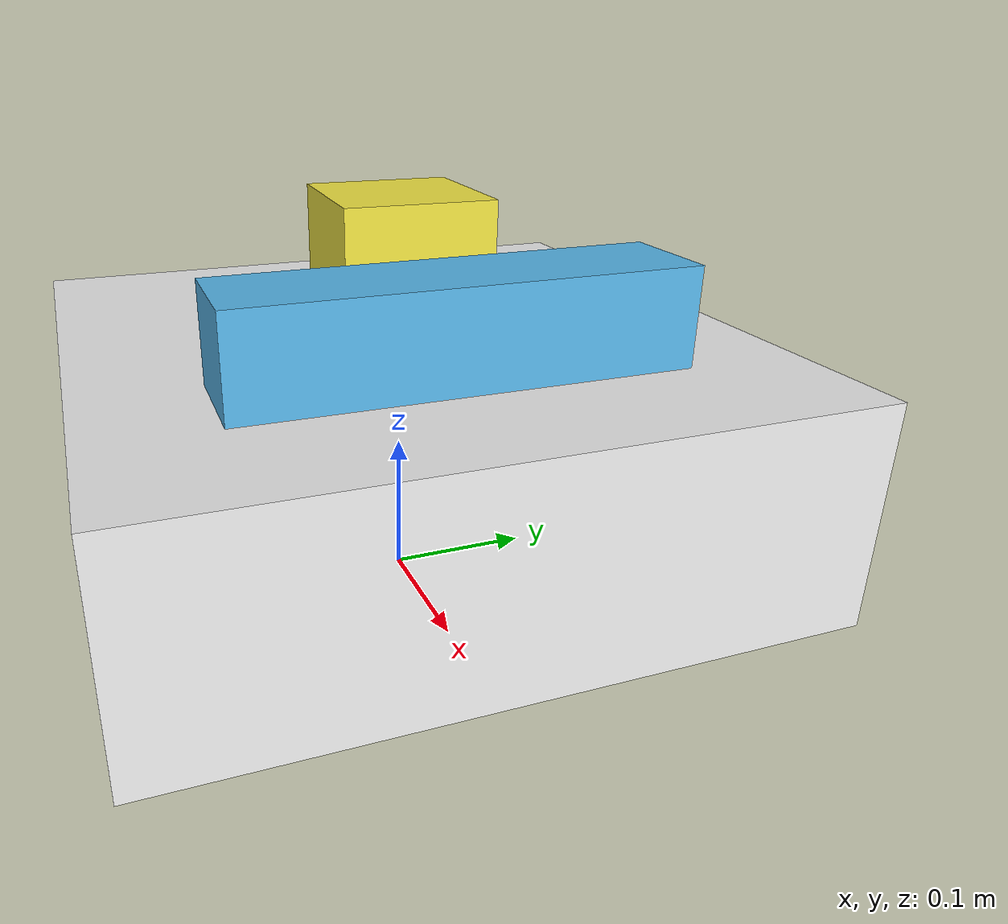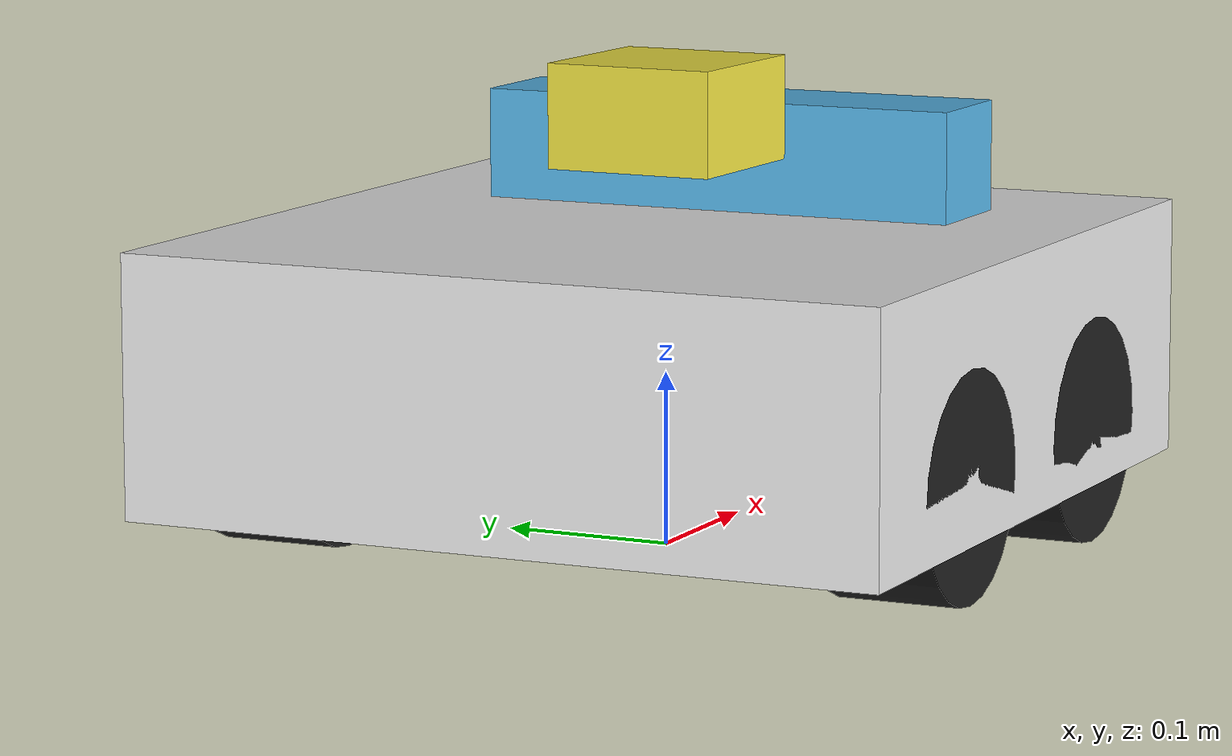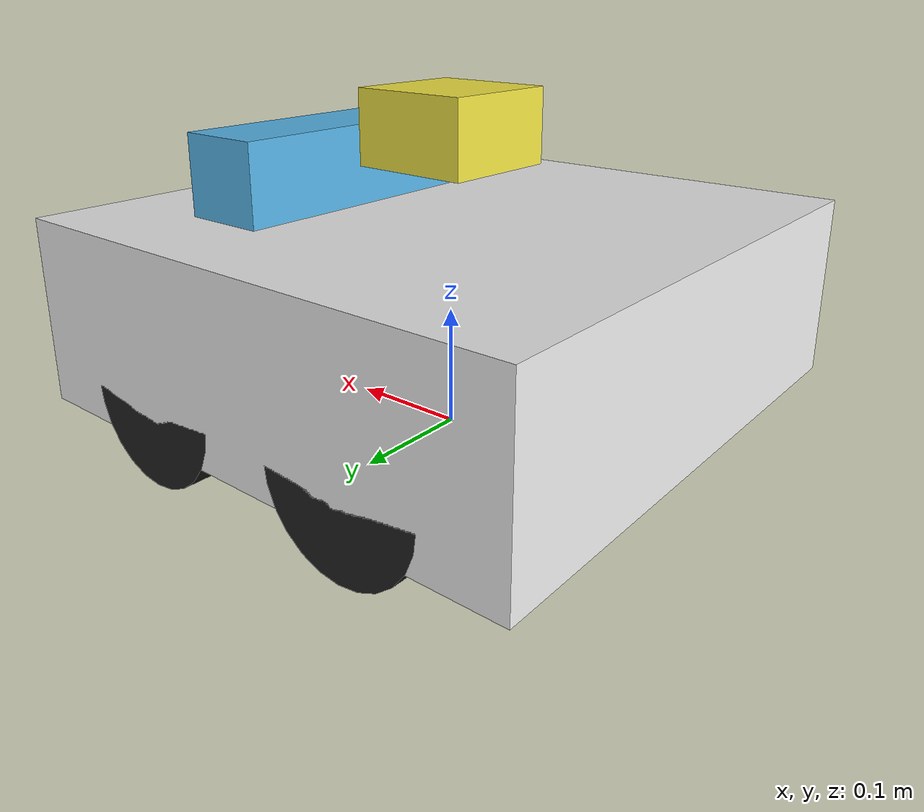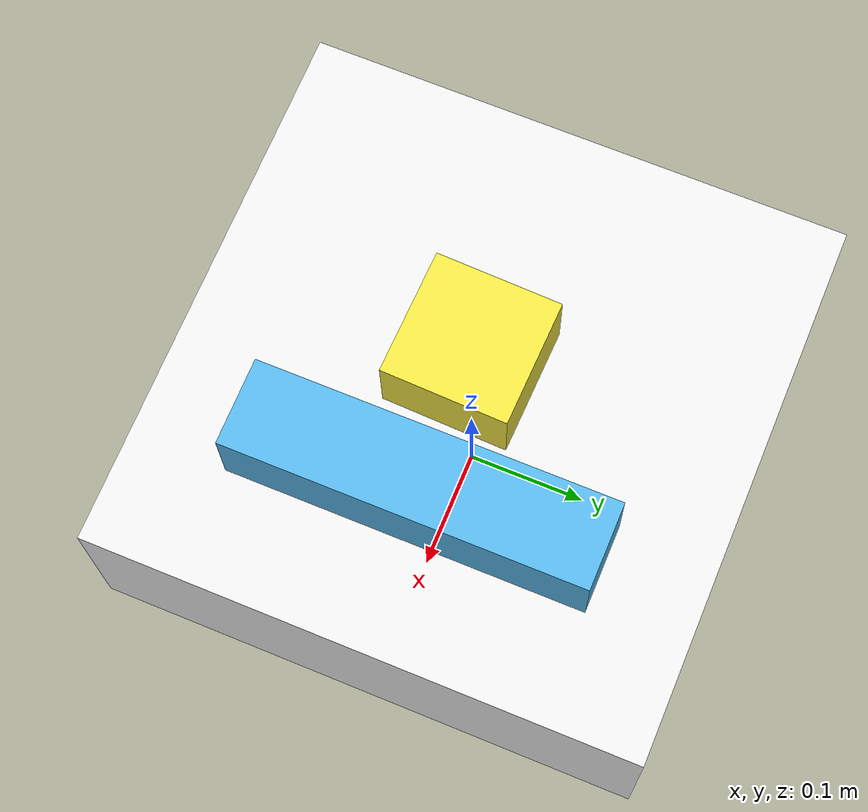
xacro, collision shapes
<?xml version="1.0"?>
<robot xmlns:xacro="http://www.ros.org/wiki/xacro" name="vaa">

  <xacro:include filename="$(find vva_description)/urdf/vaa.gazebo" />

  <xacro:property name="base_link_depth_m" value="0.45" />
  <xacro:property name="base_link_width_m" value="0.45" />
  <xacro:property name="base_link_height_m" value="0.27" />
  <xacro:property name="base_link_elevation_m" value="0.035" />
  <xacro:property name="base_link_mass_kg" value="5.0" />

  <material name="black">
    <color rgba="0 0 0 1"/>
  </material>
  <material name="white">
    <color rgba="1 1 1 1"/>
  </material>
  <material name="yellow">
    <color rgba="1 1 0 1"/>
  </material>

  <link name="base_footprint" />

  <link name="base_stabilized" />
  <joint name="base_stabilized_joint" type="fixed">
    <origin rpy="0 0 0" xyz="0 0 ${base_link_elevation_m}"/>
    <parent link="base_footprint"/>
    <child link="base_stabilized"/>
  </joint>

  <link name="base_balancing_x" />
  <!-- This joint is referenced from "vva_kinect_aux", do not change the name -->
  <joint name="base_balancing_x_joint" type="revolute">
    <axis xyz="1 0 0"/>
    <limit effort="1.0" lower="${-pi/2}" upper="${pi/2}" velocity="0.5"/>
    <origin rpy="0 0 0" xyz="0 0 0"/>
    <parent link="base_stabilized"/>
    <child link="base_balancing_x"/>
	</joint>

  <link name="base_link">
    <visual>
      <geometry>
        <mesh filename="package://vva_description/meshes/20201002_VAA_BaseLink_v3.dae" scale="1.0 1.0 1.0"/>
      </geometry>
      <origin rpy="0 0 0" xyz="-0.235 -0.38 ${base_link_height_m/2 - 0.05}"/>
    </visual>
    <collision>
      <geometry>
        <box size="${base_link_depth_m} ${base_link_width_m} ${base_link_height_m - 0.12}"/>
      </geometry>
      <origin rpy="0 0 0" xyz="0 0 ${(base_link_height_m - 0.12) / 2}"/>
    </collision>
    <inertial>
      <mass value="${base_link_mass_kg}"/>
      <inertia ixx="${(1/12)*base_link_mass_kg*((base_link_height_m**2)+(base_link_depth_m**2))}" ixy="0.0" ixz="0.0"
               iyy="${(1/12)*base_link_mass_kg*((base_link_width_m**2)+(base_link_depth_m**2))}" iyz="0.0"
               izz="${(1/12)*base_link_mass_kg*((base_link_width_m**2)+(base_link_height_m**2))}"/>
    </inertial>
  </link>
  <!-- This joint is referenced from "vva_kinect_aux", do not change the name -->
  <joint name="base_link_y_axis_joint" type="revolute">
    <axis xyz="0 1 0"/>
    <limit effort="1.0" lower="${-pi/2}" upper="${pi/2}" velocity="0.5"/>
    <origin rpy="0 0 0" xyz="0 0 0"/>
    <parent link="base_balancing_x"/>
    <child link="base_link"/>
	</joint>

  <xacro:property name="wheel_width" value="0.07" />
  <xacro:property name="wheel_diameter" value="0.13" />
  <xacro:property name="wheel_mass_kg" value="0.138" />

  <xacro:macro name="right_wheel" params="prefix joint_x joint_y">
    <link name="${prefix}_wheel">
      <visual>
        <geometry>
          <mesh filename="package://vva_description/meshes/20200914_VAA_Wheel2.dae" scale="1.0 1.0 1.0"/>
        </geometry>
        <origin rpy="0 0 0" xyz="-0.138 -0.19 0.052"/>
      </visual>
      <collision>
        <geometry>
          <cylinder length="${wheel_width}" radius="${wheel_diameter/2}"/>
        </geometry>
        <surface>
          <friction>
            <ode>
              <mu>0.4</mu>
              <mu2>0.4</mu2>
              <slip1>0.3</slip1>
              <slip2>0.3</slip2>
            </ode>
          </friction>
        </surface>
        <origin rpy="1.5708 0 0" xyz="0 0 0"/>
      </collision>
      <inertial>
        <mass value="${wheel_mass_kg}"/>
        <inertia ixx="${wheel_mass_kg/10}" ixy="0.0" ixz="0.0"
                 iyy="${wheel_mass_kg/10}" iyz="0.0"
                 izz="${wheel_mass_kg/10}"/>
      </inertial>
    </link>
    <joint name="${prefix}_wheel_joint" type="continuous">
      <parent link="base_link"/>
      <child link="${prefix}_wheel"/>
      <axis xyz="0 1 0"/>
      <origin rpy="0 0 0" xyz="${joint_x} ${joint_y} ${(wheel_diameter/2)-base_link_elevation_m+0.003}"/>
    </joint>
  </xacro:macro>

  <xacro:right_wheel prefix="right_front" joint_x="${(base_link_depth_m/2)-0.13}" joint_y="${-(base_link_width_m/2) + 0.035}" />
  <xacro:right_wheel prefix="right_back" joint_x="${-(base_link_depth_m/2)+0.13}" joint_y="${-(base_link_width_m/2) + 0.035}" />

  <xacro:macro name="left_wheel" params="prefix joint_x joint_y">
    <link name="${prefix}_wheel">
      <visual>
        <geometry>
          <mesh filename="package://vva_description/meshes/20200914_VAA_Wheel2.dae" scale="1.0 1.0 1.0"/>
        </geometry>
        <origin rpy="${pi} 0 0" xyz="-0.138 0.19 -0.052"/>
      </visual>
      <collision>
        <geometry>
          <cylinder length="${wheel_width}" radius="${wheel_diameter/2}"/>
        </geometry>
        <surface>
          <friction>
            <ode>
              <mu>0.4</mu>
              <mu2>0.4</mu2>
              <slip1>0.3</slip1>
              <slip2>0.3</slip2>
            </ode>
          </friction>
        </surface>
        <origin rpy="1.5708 0 0" xyz="0 0 0"/>
      </collision>
      <inertial>
        <mass value="${wheel_mass_kg}"/>
        <inertia ixx="${wheel_mass_kg/10}" ixy="0.0" ixz="0.0"
                 iyy="${wheel_mass_kg/10}" iyz="0.0"
                 izz="${wheel_mass_kg/10}"/>
      </inertial>
    </link>
    <joint name="${prefix}_wheel_joint" type="continuous">
      <parent link="base_link"/>
      <child link="${prefix}_wheel"/>
      <axis xyz="0 1 0"/>
      <origin rpy="0 0 0" xyz="${joint_x} ${joint_y} ${(wheel_diameter/2)-base_link_elevation_m+0.003}"/>
    </joint>
  </xacro:macro>

  <xacro:left_wheel prefix="left_back" joint_x="${-(base_link_depth_m/2)+0.13}" joint_y="${(base_link_width_m/2) - 0.035}" />
  <xacro:left_wheel prefix="left_front" joint_x="${(base_link_depth_m/2)-0.13}" joint_y="${(base_link_width_m/2) - 0.035}" />

  <link name="kinect_frame"/>
  <!-- This joint is referenced from "vva_kinect_aux", do not change the name -->
  <joint name="kinect_joint" type="revolute">
    <axis xyz="0 1 0"/>
    <limit effort="1.0" lower="-0.54" upper="0.54" velocity="0.5"/>
    <origin rpy="0 0 0" xyz="0.1 0 0.167"/>
    <parent link="base_link"/>
    <child link="kinect_frame"/>
  </joint>

  <!-- This link (frame) is used by the hardware OpenNI Kinect -->
  <link name="camera_link">
    <visual>
      <geometry>
        <mesh filename="package://vva_description/meshes/kinect.dae"/>
      </geometry>
      <origin rpy="0 0 0" xyz="0 0 0"/>
    </visual>
    <collision>
      <geometry>
        <box size="0.07 0.29 0.065"/>
      </geometry>
      <origin rpy="0 0 0" xyz="-0.03 0 -0.015"/>
    </collision>
  </link>
  <joint name="camera_joint" type="fixed">
	  <origin xyz="0.03 0 0.03" rpy="0 0 0" />
	  <parent link="kinect_frame" />
	  <child link="camera_link" />
	</joint>

  <!-- This link (frame) is used by the Gazebo simulated Kinect -->
  <link name="kinect_gazebo_frame"/>

  <joint name="kinect_gazebo_joint" type="fixed">
	  <origin xyz="0.03 0 0.03" rpy="${-pi/2} 0 ${-pi/2}" />
	  <parent link="kinect_frame" />
	  <child link="kinect_gazebo_frame" />
	</joint>

  <link name="rplidar_frame">
    <collision>
      <geometry>
        <box size="0.10 0.10 0.06"/>
      </geometry>
      <origin rpy="0 0 0" xyz="0.015 0 -0.015"/>
    </collision>
  </link>
  <joint name="rplidar_frame_base_joint" type="fixed">
    <origin rpy="0 0 -0.03" xyz="-0.015 0 0.23"/>
    <parent link="base_link"/>
    <child link="rplidar_frame"/>
  </joint>

</robot>
